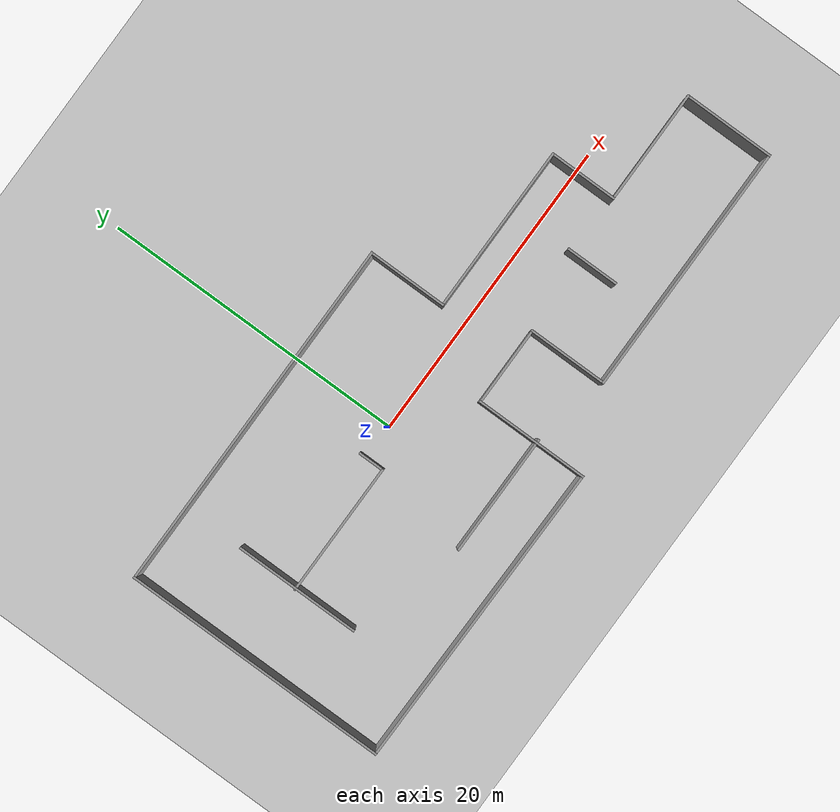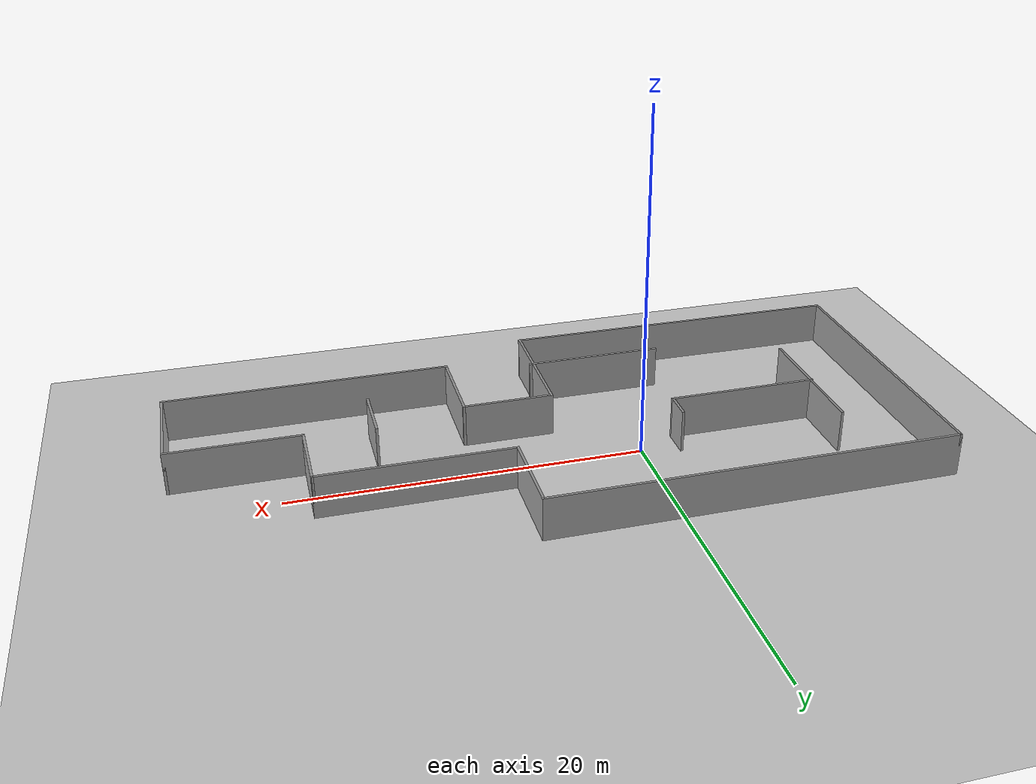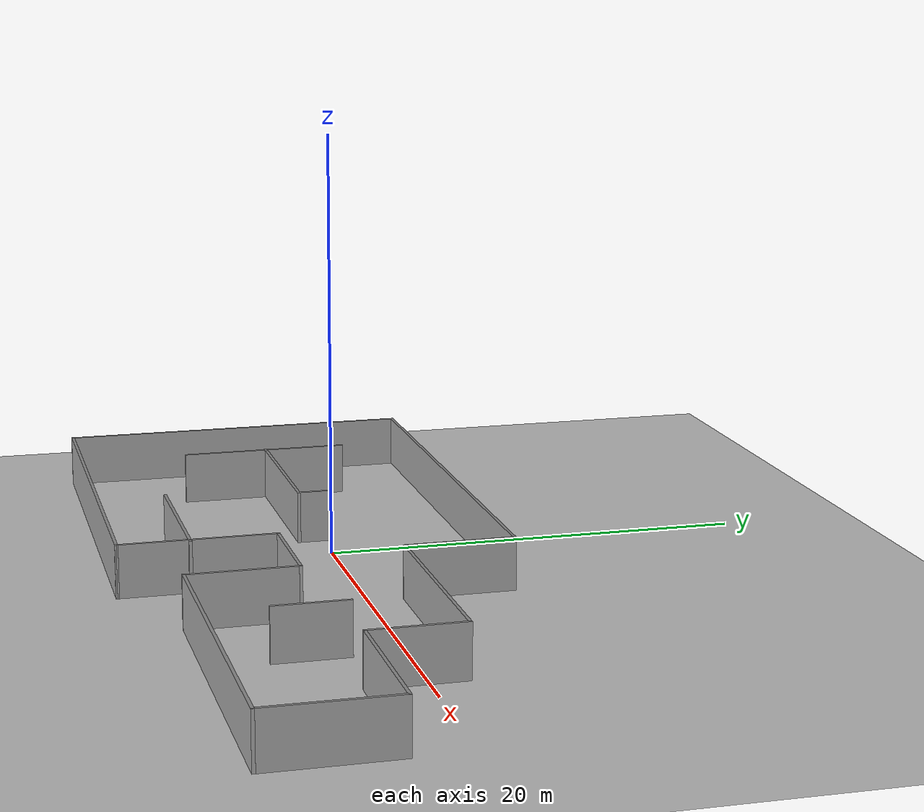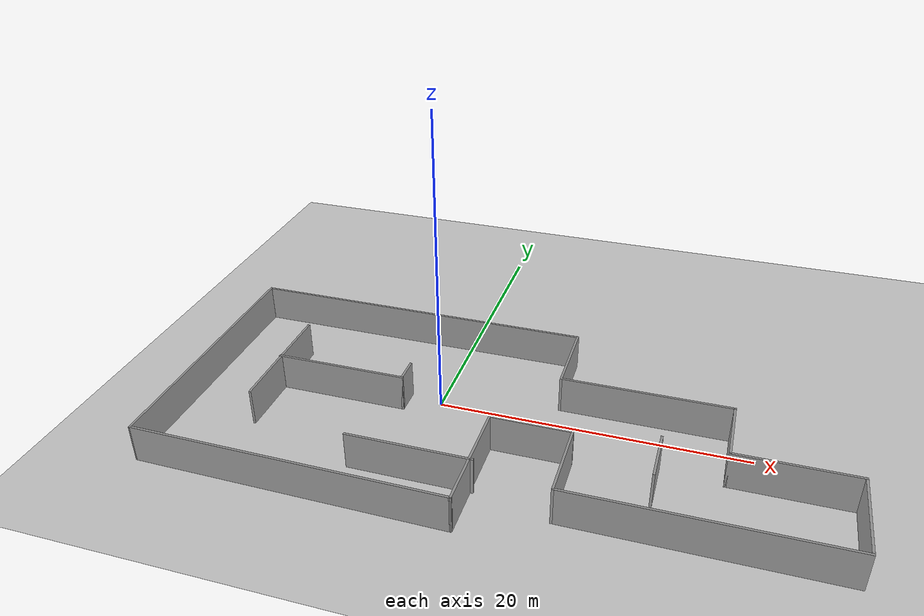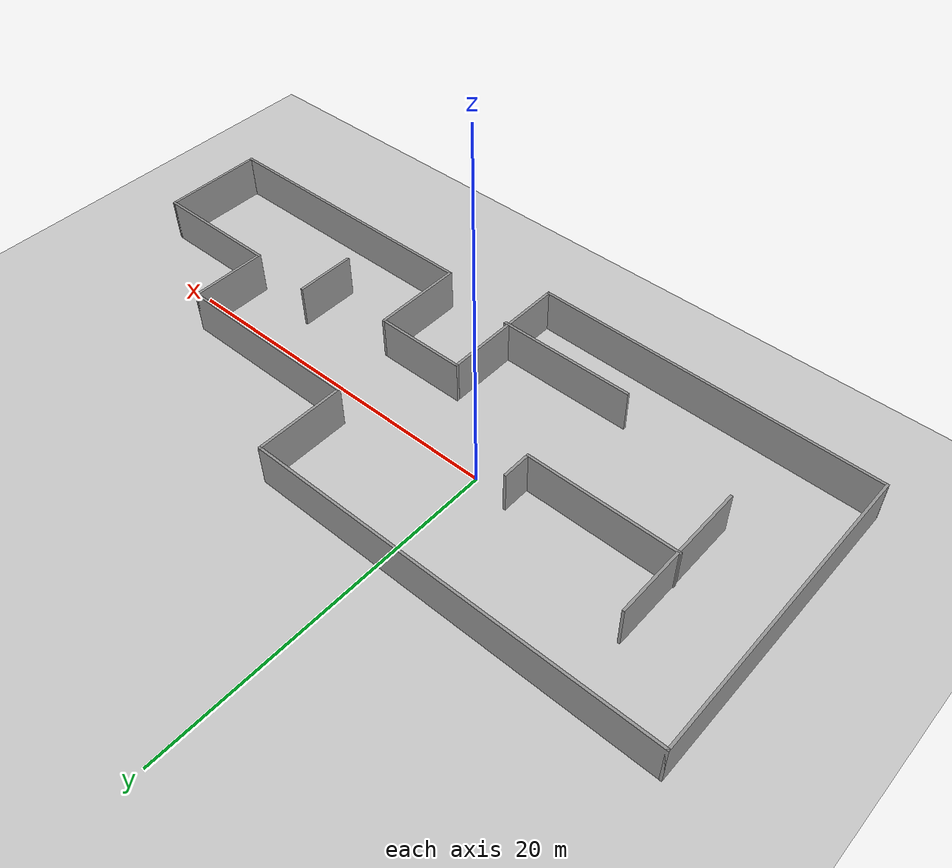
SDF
<sdf version="1.7">
 <world name="default">
  <light name="sun" type="directional">
   <pose>0 0 10 0 -0 0</pose>
   <diffuse>0.8 0.8 0.8 1</diffuse>
   <specular>0.2 0.2 0.2 1</specular>
   <attenuation>
    <range>1000</range>
    <constant>0.9</constant>
    <linear>0.01</linear>
    <quadratic>0.001</quadratic>
   </attenuation>
   <direction>-0.5 0.1 -0.9</direction>
   <spot><inner_angle>0</inner_angle><outer_angle>0</outer_angle><falloff>0</falloff></spot>
  </light>
  <model name="ground_plane">
   <static>1</static>
   <link name="link">
    <collision name="collision">
     <geometry><plane><normal>0 0 1</normal><size>100 100</size></plane></geometry>
     <surface>
      <contact><collide_bitmask>65535</collide_bitmask></contact>
      <friction><ode><mu>100</mu><mu2>50</mu2></ode></friction>
     </surface>
    </collision>
    <visual name="visual">
     <cast_shadows>0</cast_shadows>
     <geometry><plane><normal>0 0 1</normal><size>100 100</size></plane></geometry>
     <material>
      <script><uri>file://media/materials/scripts/gazebo.material</uri><name>Gazebo/Grey</name></script>
     </material>
    </visual>
   </link>
  </model>
  <gravity>0 0 -9.8</gravity>
  <magnetic_field>6e-06 2.3e-05 -4.2e-05</magnetic_field>
  <atmosphere type="adiabatic"/>
  <physics type="ode">
   <max_step_size>0.001</max_step_size>
   <real_time_factor>1</real_time_factor>
   <real_time_update_rate>1000</real_time_update_rate>
  </physics>
  <scene><ambient>0.4 0.4 0.4 1</ambient><background>0.7 0.7 0.7 1</background><shadows>1</shadows></scene>
  <spherical_coordinates>
   <surface_model>EARTH_WGS84</surface_model>
   <latitude_deg>0</latitude_deg>
   <longitude_deg>0</longitude_deg>
   <elevation>0</elevation>
   <heading_deg>0</heading_deg>
  </spherical_coordinates>
  <model name="Untitled">
   <pose>5.00672 -1.98574 0 0 -0 0</pose>
   <link name="Wall_0">
    <collision name="Wall_0_Collision">
     <geometry><box><size>17.5 0.15 2.5</size></box></geometry>
     <pose>0 0 1.25 0 -0 0</pose>
    </collision>
    <visual name="Wall_0_Visual">
     <pose>0 0 1.25 0 -0 0</pose>
     <geometry><box><size>17.5 0.15 2.5</size></box></geometry>
     <material>
      <script><uri>file://media/materials/scripts/gazebo.material</uri><name>Gazebo/Grey</name></script>
      <ambient>1 1 1 1</ambient>
     </material>
     <meta><layer>0</layer></meta>
    </visual>
    <pose>-20.7746 0.10037 0 0 -0 1.5708</pose>
   </link>
   <link name="Wall_1">
    <collision name="Wall_1_Collision">
     <geometry><box><size>23.5 0.15 2.5</size></box></geometry>
     <pose>0 0 1.25 0 -0 0</pose>
    </collision>
    <visual name="Wall_1_Visual">
     <pose>0 0 1.25 0 -0 0</pose>
     <geometry><box><size>23.5 0.15 2.5</size></box></geometry>
     <material>
      <script><uri>file://media/materials/scripts/gazebo.material</uri><name>Gazebo/Grey</name></script>
      <ambient>1 1 1 1</ambient>
     </material>
     <meta><layer>0</layer></meta>
    </visual>
    <pose>-9.09963 8.77537 0 0 -0 0</pose>
   </link>
   <link name="Wall_10">
    <collision name="Wall_10_Collision">
     <geometry><box><size>7.5 0.15 2.5</size></box></geometry>
     <pose>0 0 1.25 0 -0 0</pose>
    </collision>
    <visual name="Wall_10_Visual">
     <pose>0 0 1.25 0 -0 0</pose>
     <geometry><box><size>7.5 0.15 2.5</size></box></geometry>
     <material>
      <script><uri>file://media/materials/scripts/gazebo.material</uri><name>Gazebo/Grey</name></script>
      <ambient>1 1 1 1</ambient>
     </material>
     <meta><layer>0</layer></meta>
    </visual>
    <pose>-0.674627 -5.09963 0 0 -0 -1.5708</pose>
   </link>
   <link name="Wall_11">
    <collision name="Wall_11_Collision">
     <geometry><box><size>20.251 0.15 2.5</size></box></geometry>
     <pose>0 0 1.25 0 -0 0</pose>
    </collision>
    <visual name="Wall_11_Visual">
     <pose>0 0 1.25 0 -0 0</pose>
     <geometry><box><size>20.251 0.15 2.5</size></box></geometry>
     <material>
      <script><uri>file://media/materials/scripts/gazebo.material</uri><name>Gazebo/Grey</name></script>
      <ambient>1 1 1 1</ambient>
     </material>
     <meta><layer>0</layer></meta>
    </visual>
    <pose>-10.7246 -8.67463 0 0 -0 3.13164</pose>
   </link>
   <link name="Wall_13">
    <collision name="Wall_13_Collision">
     <geometry><box><size>3.5 0.15 2.5</size></box></geometry>
     <pose>0 0 1.25 0 -0 0</pose>
    </collision>
    <visual name="Wall_13_Visual">
     <pose>0 0 1.25 0 -0 0</pose>
     <geometry><box><size>3.5 0.15 2.5</size></box></geometry>
     <material>
      <script><uri>file://media/materials/scripts/gazebo.material</uri><name>Gazebo/Grey</name></script>
      <ambient>1 1 1 1</ambient>
     </material>
     <meta><layer>0</layer></meta>
    </visual>
    <pose>9.50939 -2.01739 0 0 -0 1.5708</pose>
   </link>
   <link name="Wall_15">
    <collision name="Wall_15_Collision">
     <geometry><box><size>8.25 0.15 2.5</size></box></geometry>
     <pose>0 0 1.25 0 -0 0</pose>
    </collision>
    <visual name="Wall_15_Visual">
     <pose>0 0 1.25 0 -0 0</pose>
     <geometry><box><size>8.25 0.15 2.5</size></box></geometry>
     <material>
      <script><uri>file://media/materials/scripts/gazebo.material</uri><name>Gazebo/Grey</name></script>
      <ambient>1 1 1 1</ambient>
     </material>
     <meta><layer>0</layer></meta>
    </visual>
    <pose>-15.7509 0.748454 0 0 -0 -1.5708</pose>
   </link>
   <link name="Wall_17">
    <collision name="Wall_17_Collision">
     <geometry><box><size>8.75 0.15 2.5</size></box></geometry>
     <pose>0 0 1.25 0 -0 0</pose>
    </collision>
    <visual name="Wall_17_Visual">
     <pose>0 0 1.25 0 -0 0</pose>
     <geometry><box><size>8.75 0.15 2.5</size></box></geometry>
     <material>
      <script><uri>file://media/materials/scripts/gazebo.material</uri><name>Gazebo/Grey</name></script>
      <ambient>1 1 1 1</ambient>
     </material>
     <meta><layer>0</layer></meta>
    </visual>
    <pose>-11.5216 0.836059 0 0 -0 0</pose>
   </link>
   <link name="Wall_18">
    <collision name="Wall_18_Collision">
     <geometry><box><size>1.75 0.15 2.5</size></box></geometry>
     <pose>0 0 1.25 0 -0 0</pose>
    </collision>
    <visual name="Wall_18_Visual">
     <pose>0 0 1.25 0 -0 0</pose>
     <geometry><box><size>1.75 0.15 2.5</size></box></geometry>
     <material>
      <script><uri>file://media/materials/scripts/gazebo.material</uri><name>Gazebo/Grey</name></script>
      <ambient>1 1 1 1</ambient>
     </material>
     <meta><layer>0</layer></meta>
    </visual>
    <pose>-7.22163 1.63606 0 0 -0 1.5708</pose>
   </link>
   <link name="Wall_2">
    <collision name="Wall_2_Collision">
     <geometry><box><size>5.25 0.15 2.5</size></box></geometry>
     <pose>0 0 1.25 0 -0 0</pose>
    </collision>
    <visual name="Wall_2_Visual">
     <pose>0 0 1.25 0 -0 0</pose>
     <geometry><box><size>5.25 0.15 2.5</size></box></geometry>
     <material>
      <script><uri>file://media/materials/scripts/gazebo.material</uri><name>Gazebo/Grey</name></script>
      <ambient>1 1 1 1</ambient>
     </material>
     <meta><layer>0</layer></meta>
    </visual>
    <pose>2.57537 6.22537 0 0 -0 -1.5708</pose>
   </link>
   <link name="Wall_20">
    <collision name="Wall_20_Collision">
     <geometry><box><size>8 0.15 2.5</size></box></geometry>
     <pose>0 0 1.25 0 -0 0</pose>
    </collision>
    <visual name="Wall_20_Visual">
     <pose>0 0 1.25 0 -0 0</pose>
     <geometry><box><size>8 0.15 2.5</size></box></geometry>
     <material>
      <script><uri>file://media/materials/scripts/gazebo.material</uri><name>Gazebo/Grey</name></script>
      <ambient>1 1 1 1</ambient>
     </material>
     <meta><layer>0</layer></meta>
    </visual>
    <pose>-4.41668 -5.46882 0 0 -0 0</pose>
   </link>
   <link name="Wall_3">
    <collision name="Wall_3_Collision">
     <geometry><box><size>11 0.15 2.5</size></box></geometry>
     <pose>0 0 1.25 0 -0 0</pose>
    </collision>
    <visual name="Wall_3_Visual">
     <pose>0 0 1.25 0 -0 0</pose>
     <geometry><box><size>11 0.15 2.5</size></box></geometry>
     <material>
      <script><uri>file://media/materials/scripts/gazebo.material</uri><name>Gazebo/Grey</name></script>
      <ambient>1 1 1 1</ambient>
     </material>
     <meta><layer>0</layer></meta>
    </visual>
    <pose>8.00037 3.67537 0 0 -0 0</pose>
   </link>
   <link name="Wall_4">
    <collision name="Wall_4_Collision">
     <geometry><box><size>4.5 0.15 2.5</size></box></geometry>
     <pose>0 0 1.25 0 -0 0</pose>
    </collision>
    <visual name="Wall_4_Visual">
     <pose>0 0 1.25 0 -0 0</pose>
     <geometry><box><size>4.5 0.15 2.5</size></box></geometry>
     <material>
      <script><uri>file://media/materials/scripts/gazebo.material</uri><name>Gazebo/Grey</name></script>
      <ambient>1 1 1 1</ambient>
     </material>
     <meta><layer>0</layer></meta>
    </visual>
    <pose>13.4254 1.50037 0 0 -0 -1.5708</pose>
   </link>
   <link name="Wall_5">
    <collision name="Wall_5_Collision">
     <geometry><box><size>7.5 0.15 2.5</size></box></geometry>
     <pose>0 0 1.25 0 -0 0</pose>
    </collision>
    <visual name="Wall_5_Visual">
     <pose>0 0 1.25 0 -0 0</pose>
     <geometry><box><size>7.5 0.15 2.5</size></box></geometry>
     <material>
      <script><uri>file://media/materials/scripts/gazebo.material</uri><name>Gazebo/Grey</name></script>
      <ambient>1 1 1 1</ambient>
     </material>
     <meta><layer>0</layer></meta>
    </visual>
    <pose>17.1004 -0.67463 0 0 -0 0</pose>
   </link>
   <link name="Wall_6">
    <collision name="Wall_6_Collision">
     <geometry><box><size>6 0.15 2.5</size></box></geometry>
     <pose>0 0 1.25 0 -0 0</pose>
    </collision>
    <visual name="Wall_6_Visual">
     <pose>0 0 1.25 0 -0 0</pose>
     <geometry><box><size>6 0.15 2.5</size></box></geometry>
     <material>
      <script><uri>file://media/materials/scripts/gazebo.material</uri><name>Gazebo/Grey</name></script>
      <ambient>1 1 1 1</ambient>
     </material>
     <meta><layer>0</layer></meta>
    </visual>
    <pose>20.7754 -3.59963 0 0 -0 -1.5708</pose>
   </link>
   <link name="Wall_7">
    <collision name="Wall_7_Collision">
     <geometry><box><size>16.5 0.15 2.5</size></box></geometry>
     <pose>0 0 1.25 0 -0 0</pose>
    </collision>
    <visual name="Wall_7_Visual">
     <pose>0 0 1.25 0 -0 0</pose>
     <geometry><box><size>16.5 0.15 2.5</size></box></geometry>
     <material>
      <script><uri>file://media/materials/scripts/gazebo.material</uri><name>Gazebo/Grey</name></script>
      <ambient>1 1 1 1</ambient>
     </material>
     <meta><layer>0</layer></meta>
    </visual>
    <pose>12.6004 -6.52463 0 0 -0 3.14159</pose>
   </link>
   <link name="Wall_8">
    <collision name="Wall_8_Collision">
     <geometry><box><size>5.25 0.15 2.5</size></box></geometry>
     <pose>0 0 1.25 0 -0 0</pose>
    </collision>
    <visual name="Wall_8_Visual">
     <pose>0 0 1.25 0 -0 0</pose>
     <geometry><box><size>5.25 0.15 2.5</size></box></geometry>
     <material>
      <script><uri>file://media/materials/scripts/gazebo.material</uri><name>Gazebo/Grey</name></script>
      <ambient>1 1 1 1</ambient>
     </material>
     <meta><layer>0</layer></meta>
    </visual>
    <pose>4.42537 -3.97463 0 0 -0 1.5708</pose>
   </link>
   <link name="Wall_9">
    <collision name="Wall_9_Collision">
     <geometry><box><size>5.25 0.15 2.5</size></box></geometry>
     <pose>0 0 1.25 0 -0 0</pose>
    </collision>
    <visual name="Wall_9_Visual">
     <pose>0 0 1.25 0 -0 0</pose>
     <geometry><box><size>5.25 0.15 2.5</size></box></geometry>
     <material>
      <script><uri>file://media/materials/scripts/gazebo.material</uri><name>Gazebo/Grey</name></script>
      <ambient>1 1 1 1</ambient>
     </material>
     <meta><layer>0</layer></meta>
    </visual>
    <pose>1.87537 -1.42463 0 0 -0 3.14159</pose>
   </link>
   <static>1</static>
  </model>
 </world>
</sdf>
